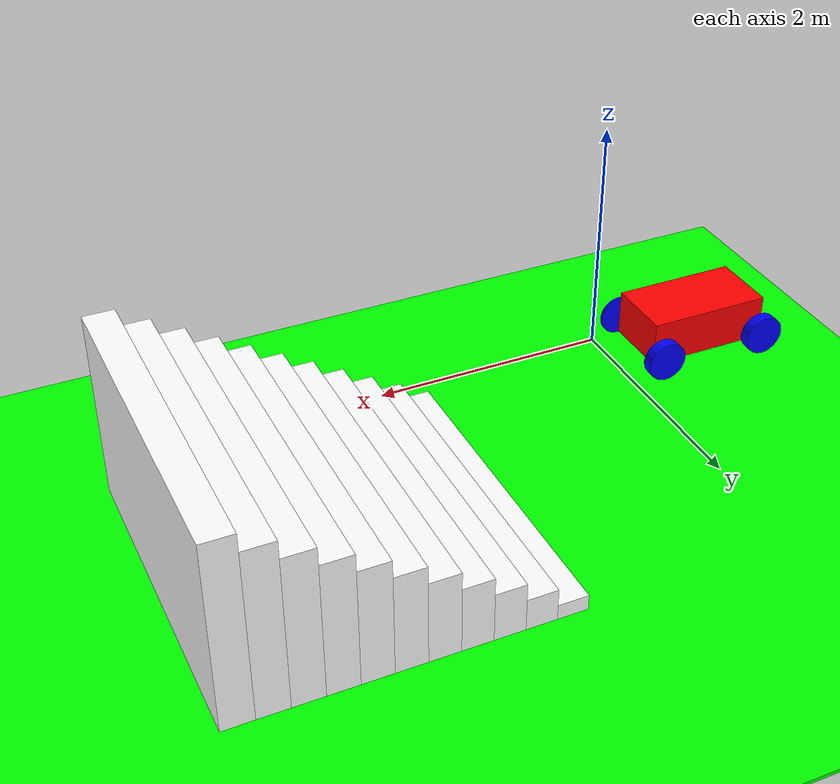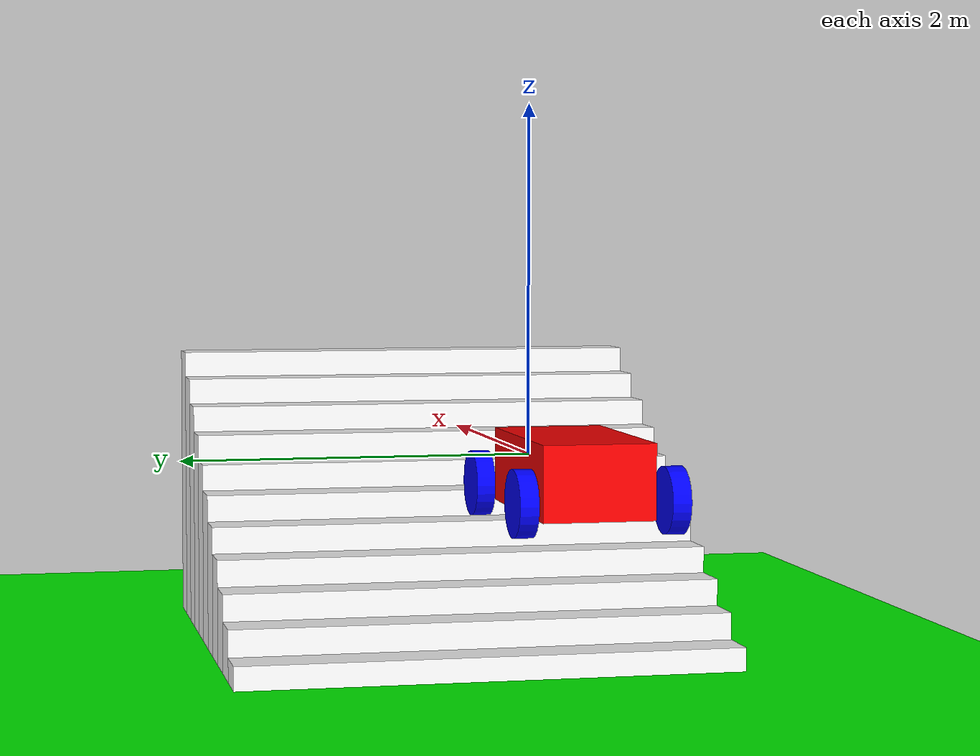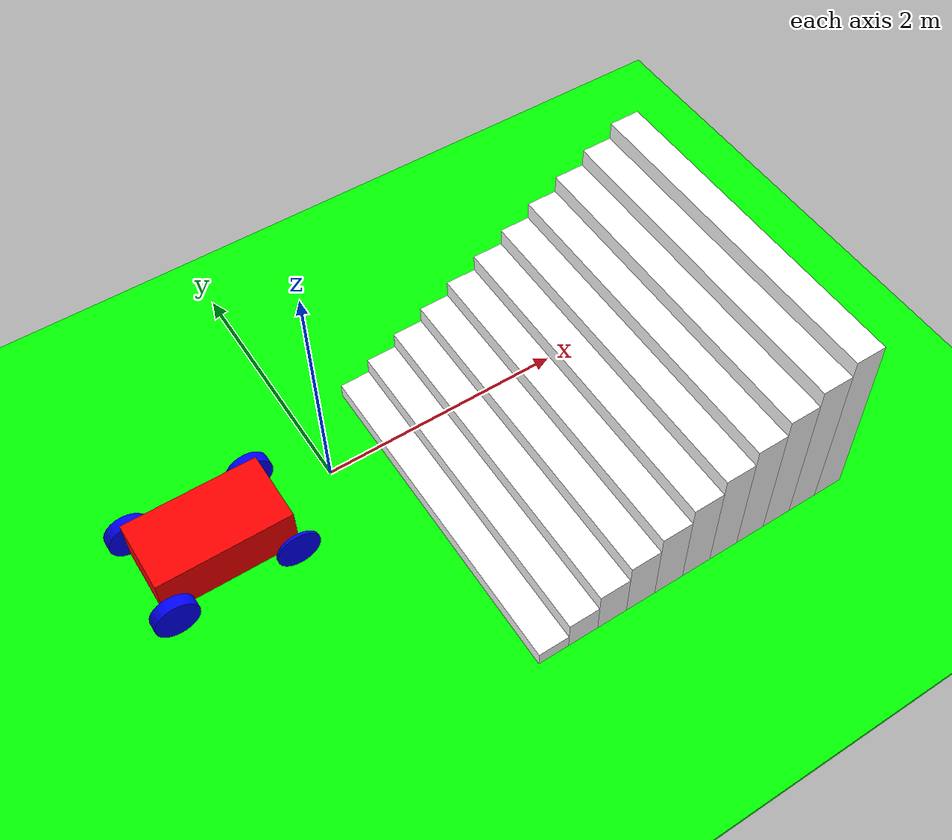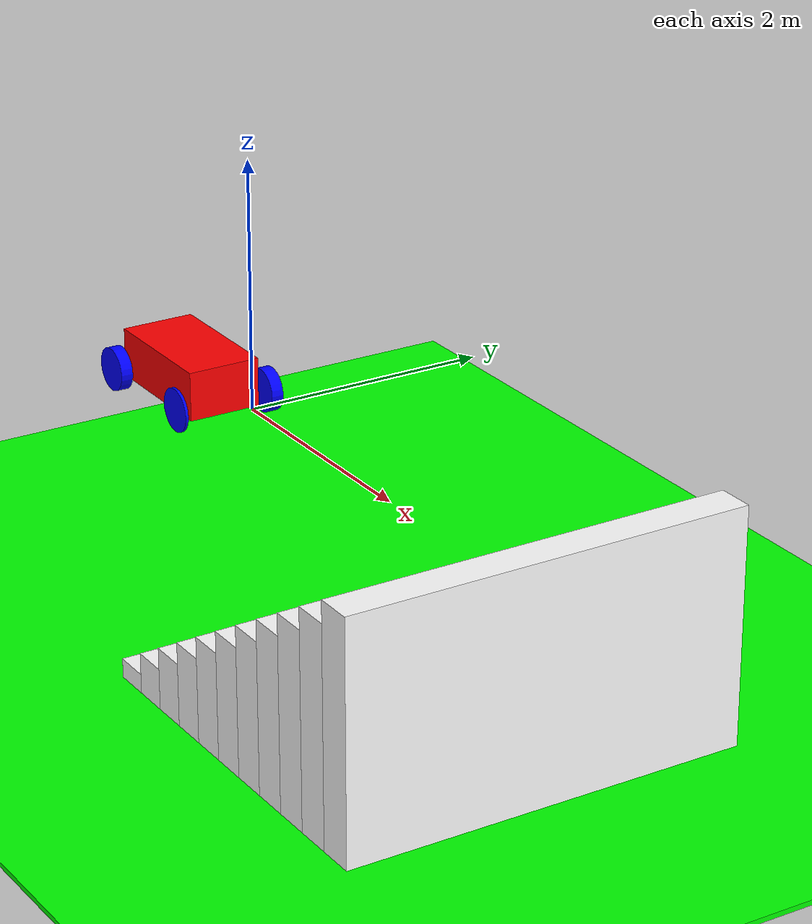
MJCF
<mujoco model="env">
    <option timestep="0.005" />
    <actuator>
        <motor gear="1.0" ctrlrange="-40.0 40.0" joint="wheel0" name="motor0"/>
        <motor gear="1.0" ctrlrange="-40.0 40.0" joint="wheel1" name="motor1"/>
        <motor gear="1.0" ctrlrange="-40.0 40.0" joint="wheel2" name="motor2"/>
        <motor gear="1.0" ctrlrange="-40.0 40.0" joint="wheel3" name="motor3"/>
    </actuator>
    <worldbody>
        <body name="frame" pos="-1.0 0 0">
            <geom mass="50.0" pos="0 0 0" rgba="1 0 0 1" size="0.55 0.3 0.2" type="box"></geom>
            <joint type='free' name='frame:base' pos='0 0 0'/>
			<camera euler="0 0 0" fovy="40" name="rgb" pos="0 0 2.5"></camera>

            <body name="lf_wheel" pos="0.5 -0.4 -0.1" quat="0.7071067811865476 0.7071067811865476 0 0">
                <geom mass="1" rgba="0 0 1 1" size="0.1778 0.0125" type="cylinder"/>
                <joint axis="0 0 1" name="wheel0" type="hinge"/>
            </body>

            <body name="rf_wheel" pos="0.5 0.4 -0.1" quat="0.7071067811865476 0.7071067811865476 0 0">
                <geom mass="1" rgba="0 0 1 1" size="0.1778 0.05" type="cylinder"/>
                <joint axis="0 0 1" name="wheel1" type="hinge"/>
            </body>

            <body name="lb_wheel" pos="-0.5 -0.4 -0.1" quat="0.7071067811865476 0.7071067811865476 0 0">>
                <geom mass="1" rgba="0 0 1 1" size="0.1778 0.05" type="cylinder"/>
                <joint axis="0 0 1" name="wheel2" type="hinge"/>
            </body>

            <body name="rb_wheel" pos="-0.5 0.4 -0.1" quat="0.7071067811865476 0.7071067811865476 0 0">>
                <geom mass="1" rgba="0 0 1 1" size="0.1778 0.05" type="cylinder"/>
                <joint axis="0 0 1" name="wheel3" type="hinge"/>
            </body>

        </body>

        <body name="floor" pos="0 0 -1.5">
            <geom condim="3" size="20.0 20.0 0.02" rgba="0 1 0 1" type="box"/>
            <body name="step0" pos="1.0 0 0.08636">
                <geom condim="3" size="0.14605 1.61 0.08636" rgba="1 1 1 1" type="box"/>
            </body>
            <body name="step1" pos="1.2921 0.0 0.17272">
                <geom condim="3" size="0.14605 1.61 0.17272" rgba="1 1 1 1" type="box"/>
            </body>
            <body name="step2" pos="1.5842 0.0 0.25908">
                <geom condim="3" size="0.14605 1.61 0.25908" rgba="1 1 1 1" type="box"/>
            </body>
            <body name="step3" pos="1.8763 0.0 0.34544">
                <geom condim="3" size="0.14605 1.61 0.34544" rgba="1 1 1 1" type="box"/>
            </body>
            <body name="step4" pos="2.1684 0.0 0.4318">
                <geom condim="3" size="0.14605 1.61 0.4318" rgba="1 1 1 1" type="box"/>
            </body>
            <body name="step5" pos="2.4605 0.0 0.51816">
                <geom condim="3" size="0.14605 1.61 0.51816" rgba="1 1 1 1" type="box"/>
            </body>
            <body name="step6" pos="2.7526 0.0 0.60452">
                <geom condim="3" size="0.14605 1.61 0.60452" rgba="1 1 1 1" type="box"/>
            </body>
            <body name="step7" pos="3.0447 0.0 0.69088">
                <geom condim="3" size="0.14605 1.61 0.69088" rgba="1 1 1 1" type="box"/>
            </body>
            <body name="step8" pos="3.3368 0.0 0.77724">
                <geom condim="3" size="0.14605 1.61 0.77724" rgba="1 1 1 1" type="box"/>
            </body>
            <body name="step9" pos="3.6289 0.0 0.8636">
                <geom condim="3" size="0.14605 1.61 0.8636" rgba="1 1 1 1" type="box"/>
            </body>
            <body name="step10" pos="3.921 0.0 0.94996">
                <geom condim="3" size="0.14605 1.61 0.94996" rgba="1 1 1 1" type="box"/>
                <site name='wypt0' pos="0 0 0.94996" size='0.0005 0.0005 0.0005' rgba='1 1 0 1' type='sphere'/>
            </body>

        </body>
    </worldbody>

</mujoco>
